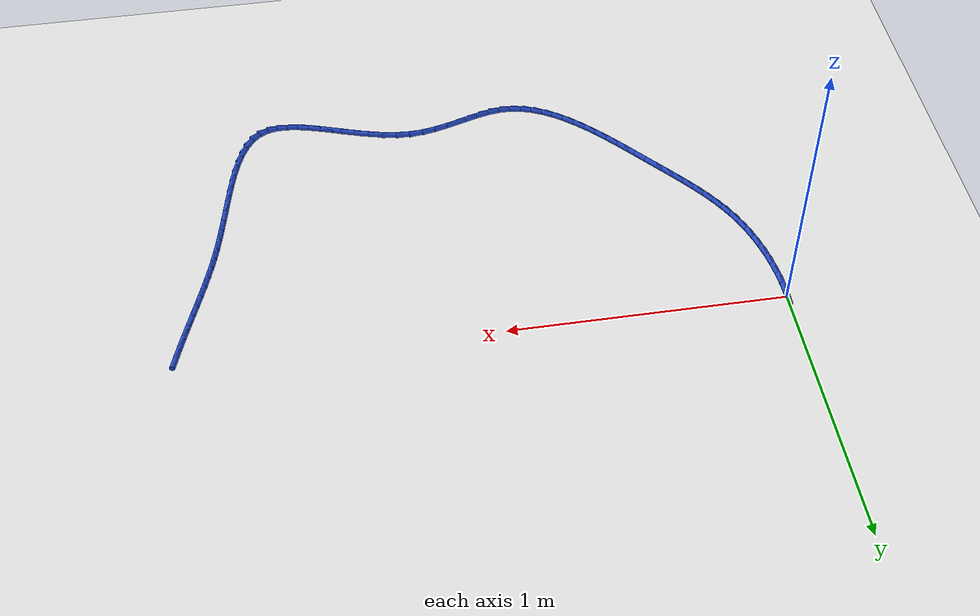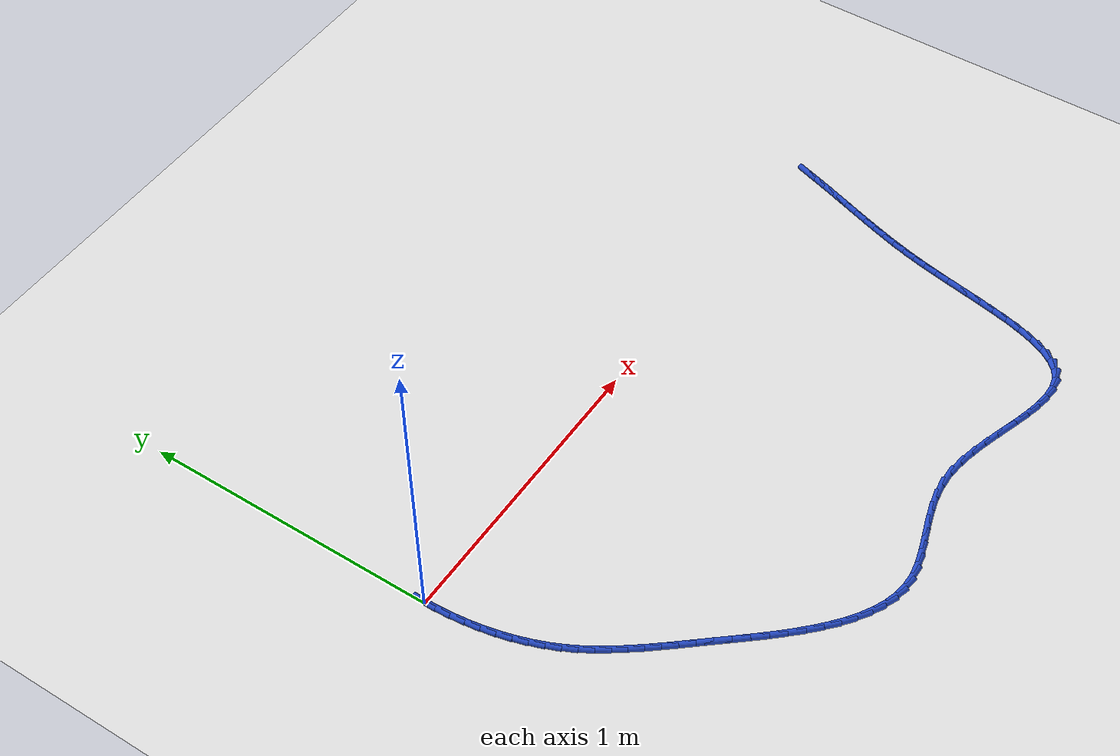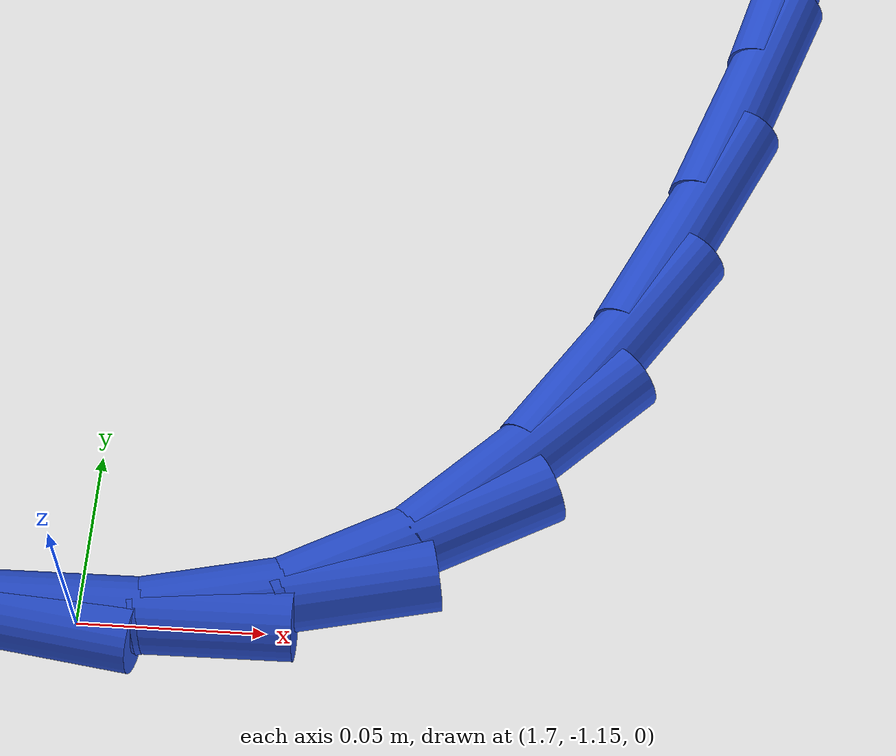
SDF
<sdf version="1.6">
 <world name="default">
  <model name="ground_plane">
   <static>1</static>
   <link name="link">
    <collision name="collision">
     <geometry><plane><normal>0 0 1</normal><size>100 100</size></plane></geometry>
     <surface><friction><ode><mu>100</mu><mu2>50</mu2></ode></friction></surface>
    </collision>
    <visual name="visual">
     <cast_shadows>0</cast_shadows>
     <geometry><plane><normal>0 0 1</normal><size>100 100</size></plane></geometry>
     <material>
      <script><uri>file://media/materials/scripts/gazebo.material</uri><name>Gazebo/WhiteGlow</name></script>
     </material>
    </visual>
   </link>
  </model>
  <model name="line">
   <link name="link_0">
    <pose>2.6020852139652106e-17 4.163336342344337e-17 0.01 0 1.57 1.5517092501515306</pose>
    <collision name="collision">
     <geometry><cylinder><radius>0.01</radius><length>0.08</length></cylinder></geometry>
    </collision>
    <visual name="visual">
     <material>
      <script><name>Gazebo/Blue</name><uri>file://media/materials/scripts/gazebo.material</uri></script>
     </material>
     <geometry><cylinder><radius>0.01</radius><length>0.08</length></cylinder></geometry>
    </visual>
   </link>
   <link name="link_75">
    <pose>2.1269436325714555 -0.04378497334036703 0.01 0 1.57 1.2665169164288894</pose>
    <collision name="collision">
     <geometry><cylinder><radius>0.01</radius><length>0.08</length></cylinder></geometry>
    </collision>
    <visual name="visual">
     <material>
      <script><name>Gazebo/Blue</name><uri>file://media/materials/scripts/gazebo.material</uri></script>
     </material>
     <geometry><cylinder><radius>0.01</radius><length>0.08</length></cylinder></geometry>
    </visual>
   </link>
   <link name="link_76">
    <pose>2.1126770678701305 -0.08921535029806768 0.01 0 1.57 1.2541441993549196</pose>
    <collision name="collision">
     <geometry><cylinder><radius>0.01</radius><length>0.08</length></cylinder></geometry>
    </collision>
    <visual name="visual">
     <material>
      <script><name>Gazebo/Blue</name><uri>file://media/materials/scripts/gazebo.material</uri></script>
     </material>
     <geometry><cylinder><radius>0.01</radius><length>0.08</length></cylinder></geometry>
    </visual>
   </link>
   <link name="link_77">
    <pose>2.0979508188845926 -0.13415657319289803 0.01 0 1.57 1.2455633368691363</pose>
    <collision name="collision">
     <geometry><cylinder><radius>0.01</radius><length>0.08</length></cylinder></geometry>
    </collision>
    <visual name="visual">
     <material>
      <script><name>Gazebo/Blue</name><uri>file://media/materials/scripts/gazebo.material</uri></script>
     </material>
     <geometry><cylinder><radius>0.01</radius><length>0.08</length></cylinder></geometry>
    </visual>
   </link>
   <link name="link_78">
    <pose>2.0829355106398157 -0.1786850038256947 0.01 0 1.57 1.2408594454276283</pose>
    <collision name="collision">
     <geometry><cylinder><radius>0.01</radius><length>0.08</length></cylinder></geometry>
    </collision>
    <visual name="visual">
     <material>
      <script><name>Gazebo/Blue</name><uri>file://media/materials/scripts/gazebo.material</uri></script>
     </material>
     <geometry><cylinder><radius>0.01</radius><length>0.08</length></cylinder></geometry>
    </visual>
   </link>
   <link name="link_79">
    <pose>2.067801768160775 -0.22287700399729649 0.01 0 1.57 1.2401084608534263</pose>
    <collision name="collision">
     <geometry><cylinder><radius>0.01</radius><length>0.08</length></cylinder></geometry>
    </collision>
    <visual name="visual">
     <material>
      <script><name>Gazebo/Blue</name><uri>file://media/materials/scripts/gazebo.material</uri></script>
     </material>
     <geometry><cylinder><radius>0.01</radius><length>0.08</length></cylinder></geometry>
    </visual>
   </link>
   <link name="link_80">
    <pose>2.0527202164724443 -0.2668089355085391 0.01 0 1.57 1.2433787307904343</pose>
    <collision name="collision">
     <geometry><cylinder><radius>0.01</radius><length>0.08</length></cylinder></geometry>
    </collision>
    <visual name="visual">
     <material>
      <script><name>Gazebo/Blue</name><uri>file://media/materials/scripts/gazebo.material</uri></script>
     </material>
     <geometry><cylinder><radius>0.01</radius><length>0.08</length></cylinder></geometry>
    </visual>
   </link>
   <link name="link_81">
    <pose>2.0378614805997985 -0.3105571601602616 0.01 0 1.57 1.2507308796747882</pose>
    <collision name="collision">
     <geometry><cylinder><radius>0.01</radius><length>0.08</length></cylinder></geometry>
    </collision>
    <visual name="visual">
     <material>
      <script><name>Gazebo/Blue</name><uri>file://media/materials/scripts/gazebo.material</uri></script>
     </material>
     <geometry><cylinder><radius>0.01</radius><length>0.08</length></cylinder></geometry>
    </visual>
   </link>
   <link name="link_82">
    <pose>2.023396185567812 -0.35419803975330033 0.01 0 1.57 1.2622157201182658</pose>
    <collision name="collision">
     <geometry><cylinder><radius>0.01</radius><length>0.08</length></cylinder></geometry>
    </collision>
    <visual name="visual">
     <material>
      <script><name>Gazebo/Blue</name><uri>file://media/materials/scripts/gazebo.material</uri></script>
     </material>
     <geometry><cylinder><radius>0.01</radius><length>0.08</length></cylinder></geometry>
    </visual>
   </link>
   <link name="link_83">
    <pose>2.00949495640146 -0.397807936088492 0.01 0 1.57 1.2778700351086891</pose>
    <collision name="collision">
     <geometry><cylinder><radius>0.01</radius><length>0.08</length></cylinder></geometry>
    </collision>
    <visual name="visual">
     <material>
      <script><name>Gazebo/Blue</name><uri>file://media/materials/scripts/gazebo.material</uri></script>
     </material>
     <geometry><cylinder><radius>0.01</radius><length>0.08</length></cylinder></geometry>
    </visual>
   </link>
   <link name="link_84">
    <pose>1.9963284181257155 -0.4414632109666753 0.01 0 1.57 1.297710138307032</pose>
    <collision name="collision">
     <geometry><cylinder><radius>0.01</radius><length>0.08</length></cylinder></geometry>
    </collision>
    <visual name="visual">
     <material>
      <script><name>Gazebo/Blue</name><uri>file://media/materials/scripts/gazebo.material</uri></script>
     </material>
     <geometry><cylinder><radius>0.01</radius><length>0.08</length></cylinder></geometry>
    </visual>
   </link>
   <link name="link_85">
    <pose>1.984067195765554 -0.4852402261886862 0.01 0 1.57 1.3214047040152306</pose>
    <collision name="collision">
     <geometry><cylinder><radius>0.01</radius><length>0.08</length></cylinder></geometry>
    </collision>
    <visual name="visual">
     <material>
      <script><name>Gazebo/Blue</name><uri>file://media/materials/scripts/gazebo.material</uri></script>
     </material>
     <geometry><cylinder><radius>0.01</radius><length>0.08</length></cylinder></geometry>
    </visual>
   </link>
   <link name="link_86">
    <pose>1.9728643768158236 -0.5292256356888021 0.01 0 1.57 1.3440418974611992</pose>
    <collision name="collision">
     <geometry><cylinder><radius>0.01</radius><length>0.08</length></cylinder></geometry>
    </collision>
    <visual name="visual">
     <material>
      <script><name>Gazebo/Blue</name><uri>file://media/materials/scripts/gazebo.material</uri></script>
     </material>
     <geometry><cylinder><radius>0.01</radius><length>0.08</length></cylinder></geometry>
    </visual>
   </link>
   <link name="link_87">
    <pose>1.96261261830921 -0.5736589304911777 0.01 0 1.57 1.3615274059149705</pose>
    <collision name="collision">
     <geometry><cylinder><radius>0.01</radius><length>0.08</length></cylinder></geometry>
    </collision>
    <visual name="visual">
     <material>
      <script><name>Gazebo/Blue</name><uri>file://media/materials/scripts/gazebo.material</uri></script>
     </material>
     <geometry><cylinder><radius>0.01</radius><length>0.08</length></cylinder></geometry>
    </visual>
   </link>
   <link name="link_88">
    <pose>1.9530051067542071 -0.6188966635572721 0.01 0 1.57 1.3735082980067606</pose>
    <collision name="collision">
     <geometry><cylinder><radius>0.01</radius><length>0.08</length></cylinder></geometry>
    </collision>
    <visual name="visual">
     <material>
      <script><name>Gazebo/Blue</name><uri>file://media/materials/scripts/gazebo.material</uri></script>
     </material>
     <geometry><cylinder><radius>0.01</radius><length>0.08</length></cylinder></geometry>
    </visual>
   </link>
   <link name="link_89">
    <pose>1.9437299555490972 -0.6652983650709312 0.01 0 1.57 1.3800376365459246</pose>
    <collision name="collision">
     <geometry><cylinder><radius>0.01</radius><length>0.08</length></cylinder></geometry>
    </collision>
    <visual name="visual">
     <material>
      <script><name>Gazebo/Blue</name><uri>file://media/materials/scripts/gazebo.material</uri></script>
     </material>
     <geometry><cylinder><radius>0.01</radius><length>0.08</length></cylinder></geometry>
    </visual>
   </link>
   <link name="link_90">
    <pose>1.9344752780921621 -0.713223565215998 0.01 0 1.57 1.38143570607454</pose>
    <collision name="collision">
     <geometry><cylinder><radius>0.01</radius><length>0.08</length></cylinder></geometry>
    </collision>
    <visual name="visual">
     <material>
      <script><name>Gazebo/Blue</name><uri>file://media/materials/scripts/gazebo.material</uri></script>
     </material>
     <geometry><cylinder><radius>0.01</radius><length>0.08</length></cylinder></geometry>
    </visual>
   </link>
   <link name="link_91">
    <pose>1.9249291877816848 -0.7630317941763154 0.01 0 1.57 1.3777832927411324</pose>
    <collision name="collision">
     <geometry><cylinder><radius>0.01</radius><length>0.08</length></cylinder></geometry>
    </collision>
    <visual name="visual">
     <material>
      <script><name>Gazebo/Blue</name><uri>file://media/materials/scripts/gazebo.material</uri></script>
     </material>
     <geometry><cylinder><radius>0.01</radius><length>0.08</length></cylinder></geometry>
    </visual>
   </link>
   <link name="link_92">
    <pose>1.9147721651788805 -0.8150001924086983 0.01 0 1.57 1.3638887959728643</pose>
    <collision name="collision">
     <geometry><cylinder><radius>0.01</radius><length>0.08</length></cylinder></geometry>
    </collision>
    <visual name="visual">
     <material>
      <script><name>Gazebo/Blue</name><uri>file://media/materials/scripts/gazebo.material</uri></script>
     </material>
     <geometry><cylinder><radius>0.01</radius><length>0.08</length></cylinder></geometry>
    </visual>
   </link>
   <link name="link_93">
    <pose>1.9035827513253574 -0.8683055533925688 0.01 0 1.57 1.335474541532387</pose>
    <collision name="collision">
     <geometry><cylinder><radius>0.01</radius><length>0.08</length></cylinder></geometry>
    </collision>
    <visual name="visual">
     <material>
      <script><name>Gazebo/Blue</name><uri>file://media/materials/scripts/gazebo.material</uri></script>
     </material>
     <geometry><cylinder><radius>0.01</radius><length>0.08</length></cylinder></geometry>
    </visual>
   </link>
   <link name="link_94">
    <pose>1.890866851319954 -0.9213406298312229 0.01 0 1.57 1.2902128713541579</pose>
    <collision name="collision">
     <geometry><cylinder><radius>0.01</radius><length>0.08</length></cylinder></geometry>
    </collision>
    <visual name="visual">
     <material>
      <script><name>Gazebo/Blue</name><uri>file://media/materials/scripts/gazebo.material</uri></script>
     </material>
     <geometry><cylinder><radius>0.01</radius><length>0.08</length></cylinder></geometry>
    </visual>
   </link>
   <link name="link_95">
    <pose>1.8761288099908289 -0.9724813326855569 0.01 0 1.57 1.2231634257358797</pose>
    <collision name="collision">
     <geometry><cylinder><radius>0.01</radius><length>0.08</length></cylinder></geometry>
    </collision>
    <visual name="visual">
     <material>
      <script><name>Gazebo/Blue</name><uri>file://media/materials/scripts/gazebo.material</uri></script>
     </material>
     <geometry><cylinder><radius>0.01</radius><length>0.08</length></cylinder></geometry>
    </visual>
   </link>
   <link name="link_96">
    <pose>1.8588729721661381 -1.020103572916467 0.01 0 1.57 1.125593211295464</pose>
    <collision name="collision">
     <geometry><cylinder><radius>0.01</radius><length>0.08</length></cylinder></geometry>
    </collision>
    <visual name="visual">
     <material>
      <script><name>Gazebo/Blue</name><uri>file://media/materials/scripts/gazebo.material</uri></script>
     </material>
     <geometry><cylinder><radius>0.01</radius><length>0.08</length></cylinder></geometry>
    </visual>
   </link>
   <link name="link_97">
    <pose>1.838603682674039 -1.062583261484852 0.01 0 1.57 0.983381371062787</pose>
    <collision name="collision">
     <geometry><cylinder><radius>0.01</radius><length>0.08</length></cylinder></geometry>
    </collision>
    <visual name="visual">
     <material>
      <script><name>Gazebo/Blue</name><uri>file://media/materials/scripts/gazebo.material</uri></script>
     </material>
     <geometry><cylinder><radius>0.01</radius><length>0.08</length></cylinder></geometry>
    </visual>
   </link>
   <link name="link_98">
    <pose>1.8148252863426912 -1.0982963093516085 0.01 0 1.57 0.7770354832604707</pose>
    <collision name="collision">
     <geometry><cylinder><radius>0.01</radius><length>0.08</length></cylinder></geometry>
    </collision>
    <visual name="visual">
     <material>
      <script><name>Gazebo/Blue</name><uri>file://media/materials/scripts/gazebo.material</uri></script>
     </material>
     <geometry><cylinder><radius>0.01</radius><length>0.08</length></cylinder></geometry>
    </visual>
   </link>
   <link name="link_99">
    <pose>1.7870421280002495 -1.1256186274776343 0.01 0 1.57 0.49793593564789457</pose>
    <collision name="collision">
     <geometry><cylinder><radius>0.01</radius><length>0.08</length></cylinder></geometry>
    </collision>
    <visual name="visual">
     <material>
      <script><name>Gazebo/Blue</name><uri>file://media/materials/scripts/gazebo.material</uri></script>
     </material>
     <geometry><cylinder><radius>0.01</radius><length>0.08</length></cylinder></geometry>
    </visual>
   </link>
   <link name="link_100">
    <pose>1.7548246564854093 -1.1431328642111627 0.01 0 1.57 0.22010862991105137</pose>
    <collision name="collision">
     <geometry><cylinder><radius>0.01</radius><length>0.08</length></cylinder></geometry>
    </collision>
    <visual name="visual">
     <material>
      <script><name>Gazebo/Blue</name><uri>file://media/materials/scripts/gazebo.material</uri></script>
     </material>
     <geometry><cylinder><radius>0.01</radius><length>0.08</length></cylinder></geometry>
    </visual>
   </link>
   <link name="link_101">
    <pose>1.718342371463013 -1.1512951730277734 0.01 0 1.57 0.006546016118900333</pose>
    <collision name="collision">
     <geometry><cylinder><radius>0.01</radius><length>0.08</length></cylinder></geometry>
    </collision>
    <visual name="visual">
     <material>
      <script><name>Gazebo/Blue</name><uri>file://media/materials/scripts/gazebo.material</uri></script>
     </material>
     <geometry><cylinder><radius>0.01</radius><length>0.08</length></cylinder></geometry>
    </visual>
   </link>
   <link name="link_102">
    <pose>1.678083563391848 -1.1515587115985837 0.01 0 1.57 -0.14082190317906665</pose>
    <collision name="collision">
     <geometry><cylinder><radius>0.01</radius><length>0.08</length></cylinder></geometry>
    </collision>
    <visual name="visual">
     <material>
      <script><name>Gazebo/Blue</name><uri>file://media/materials/scripts/gazebo.material</uri></script>
     </material>
     <geometry><cylinder><radius>0.01</radius><length>0.08</length></cylinder></geometry>
    </visual>
   </link>
   <link name="link_103">
    <pose>1.6345394821891983 -1.1453858931710734 0.01 0 1.57 -0.23606763685060314</pose>
    <collision name="collision">
     <geometry><cylinder><radius>0.01</radius><length>0.08</length></cylinder></geometry>
    </collision>
    <visual name="visual">
     <material>
      <script><name>Gazebo/Blue</name><uri>file://media/materials/scripts/gazebo.material</uri></script>
     </material>
     <geometry><cylinder><radius>0.01</radius><length>0.08</length></cylinder></geometry>
    </visual>
   </link>
   <link name="link_104">
    <pose>1.58820137777235 -1.1342391309927242 0.01 0 1.57 -0.2927017297774417</pose>
    <collision name="collision">
     <geometry><cylinder><radius>0.01</radius><length>0.08</length></cylinder></geometry>
    </collision>
    <visual name="visual">
     <material>
      <script><name>Gazebo/Blue</name><uri>file://media/materials/scripts/gazebo.material</uri></script>
     </material>
     <geometry><cylinder><radius>0.01</radius><length>0.08</length></cylinder></geometry>
    </visual>
   </link>
   <link name="link_105">
    <pose>1.5395605000585857 -1.1195808383110173 0.01 0 1.57 -0.3197860072527721</pose>
    <collision name="collision">
     <geometry><cylinder><radius>0.01</radius><length>0.08</length></cylinder></geometry>
    </collision>
    <visual name="visual">
     <material>
      <script><name>Gazebo/Blue</name><uri>file://media/materials/scripts/gazebo.material</uri></script>
     </material>
     <geometry><cylinder><radius>0.01</radius><length>0.08</length></cylinder></geometry>
    </visual>
   </link>
   <link name="link_106">
    <pose>1.489108098965192 -1.1028734283734334 0.01 0 1.57 -0.3223858936547069</pose>
    <collision name="collision">
     <geometry><cylinder><radius>0.01</radius><length>0.08</length></cylinder></geometry>
    </collision>
    <visual name="visual">
     <material>
      <script><name>Gazebo/Blue</name><uri>file://media/materials/scripts/gazebo.material</uri></script>
     </material>
     <geometry><cylinder><radius>0.01</radius><length>0.08</length></cylinder></geometry>
    </visual>
   </link>
   <link name="link_107">
    <pose>1.437335424409451 -1.085579314427453 0.01 0 1.57 -0.3025449217938873</pose>
    <collision name="collision">
     <geometry><cylinder><radius>0.01</radius><length>0.08</length></cylinder></geometry>
    </collision>
    <visual name="visual">
     <material>
      <script><name>Gazebo/Blue</name><uri>file://media/materials/scripts/gazebo.material</uri></script>
     </material>
     <geometry><cylinder><radius>0.01</radius><length>0.08</length></cylinder></geometry>
    </visual>
   </link>
   <link name="link_108">
    <pose>1.3847337263086488 -1.0691609097205579 0.01 0 1.57 -0.25995135113787704</pose>
    <collision name="collision">
     <geometry><cylinder><radius>0.01</radius><length>0.08</length></cylinder></geometry>
    </collision>
    <visual name="visual">
     <material>
      <script><name>Gazebo/Blue</name><uri>file://media/materials/scripts/gazebo.material</uri></script>
     </material>
     <geometry><cylinder><radius>0.01</radius><length>0.08</length></cylinder></geometry>
    </visual>
   </link>
   <link name="link_109">
    <pose>1.3317942545800705 -1.055080627500229 0.01 0 1.57 -0.19233647166861242</pose>
    <collision name="collision">
     <geometry><cylinder><radius>0.01</radius><length>0.08</length></cylinder></geometry>
    </collision>
    <visual name="visual">
     <material>
      <script><name>Gazebo/Blue</name><uri>file://media/materials/scripts/gazebo.material</uri></script>
     </material>
     <geometry><cylinder><radius>0.01</radius><length>0.08</length></cylinder></geometry>
    </visual>
   </link>
   <link name="link_110">
    <pose>1.2790082591409988 -1.044800881013947 0.01 0 1.57 -0.09592022087632711</pose>
    <collision name="collision">
     <geometry><cylinder><radius>0.01</radius><length>0.08</length></cylinder></geometry>
    </collision>
    <visual name="visual">
     <material>
      <script><name>Gazebo/Blue</name><uri>file://media/materials/scripts/gazebo.material</uri></script>
     </material>
     <geometry><cylinder><radius>0.01</radius><length>0.08</length></cylinder></geometry>
    </visual>
   </link>
   <link name="link_111">
    <pose>1.226866989908719 -1.0397840835091932 0.01 0 1.57 0.03048969336150573</pose>
    <collision name="collision">
     <geometry><cylinder><radius>0.01</radius><length>0.08</length></cylinder></geometry>
    </collision>
    <visual name="visual">
     <material>
      <script><name>Gazebo/Blue</name><uri>file://media/materials/scripts/gazebo.material</uri></script>
     </material>
     <geometry><cylinder><radius>0.01</radius><length>0.08</length></cylinder></geometry>
    </visual>
   </link>
   <link name="link_112">
    <pose>1.1758355822122892 -1.0413404978035683 0.01 0 1.57 0.15140028410111894</pose>
    <collision name="collision">
     <geometry><cylinder><radius>0.01</radius><length>0.08</length></cylinder></geometry>
    </collision>
    <visual name="visual">
     <material>
      <script><name>Gazebo/Blue</name><uri>file://media/materials/scripts/gazebo.material</uri></script>
     </material>
     <geometry><cylinder><radius>0.01</radius><length>0.08</length></cylinder></geometry>
    </visual>
   </link>
   <link name="link_113">
    <pose>1.1260623144628752 -1.048934295332848 0.01 0 1.57 0.239587272311852</pose>
    <collision name="collision">
     <geometry><cylinder><radius>0.01</radius><length>0.08</length></cylinder></geometry>
    </collision>
    <visual name="visual">
     <material>
      <script><name>Gazebo/Blue</name><uri>file://media/materials/scripts/gazebo.material</uri></script>
     </material>
     <geometry><cylinder><radius>0.01</radius><length>0.08</length></cylinder></geometry>
    </visual>
   </link>
   <link name="link_114">
    <pose>1.0774845560389603 -1.0608008362757106 0.01 0 1.57 0.29373270128893475</pose>
    <collision name="collision">
     <geometry><cylinder><radius>0.01</radius><length>0.08</length></cylinder></geometry>
    </collision>
    <visual name="visual">
     <material>
      <script><name>Gazebo/Blue</name><uri>file://media/materials/scripts/gazebo.material</uri></script>
     </material>
     <geometry><cylinder><radius>0.01</radius><length>0.08</length></cylinder></geometry>
    </visual>
   </link>
   <link name="link_115">
    <pose>1.0300358579734963 -1.0751532341298344 0.01 0 1.57 0.31376171680279685</pose>
    <collision name="collision">
     <geometry><cylinder><radius>0.01</radius><length>0.08</length></cylinder></geometry>
    </collision>
    <visual name="visual">
     <material>
      <script><name>Gazebo/Blue</name><uri>file://media/materials/scripts/gazebo.material</uri></script>
     </material>
     <geometry><cylinder><radius>0.01</radius><length>0.08</length></cylinder></geometry>
    </visual>
   </link>
   <link name="link_116">
    <pose>0.9836497712994348 -1.0902046023928957 0.01 0 1.57 0.29844502608587137</pose>
    <collision name="collision">
     <geometry><cylinder><radius>0.01</radius><length>0.08</length></cylinder></geometry>
    </collision>
    <visual name="visual">
     <material>
      <script><name>Gazebo/Blue</name><uri>file://media/materials/scripts/gazebo.material</uri></script>
     </material>
     <geometry><cylinder><radius>0.01</radius><length>0.08</length></cylinder></geometry>
    </visual>
   </link>
   <link name="link_117">
    <pose>0.9382598470497294 -1.104168054562573 0.01 0 1.57 0.24441965836808976</pose>
    <collision name="collision">
     <geometry><cylinder><radius>0.01</radius><length>0.08</length></cylinder></geometry>
    </collision>
    <visual name="visual">
     <material>
      <script><name>Gazebo/Blue</name><uri>file://media/materials/scripts/gazebo.material</uri></script>
     </material>
     <geometry><cylinder><radius>0.01</radius><length>0.08</length></cylinder></geometry>
    </visual>
   </link>
   <link name="link_118">
    <pose>0.8937996362573306 -1.1152567041365433 0.01 0 1.57 0.14636349501270823</pose>
    <collision name="collision">
     <geometry><cylinder><radius>0.01</radius><length>0.08</length></cylinder></geometry>
    </collision>
    <visual name="visual">
     <material>
      <script><name>Gazebo/Blue</name><uri>file://media/materials/scripts/gazebo.material</uri></script>
     </material>
     <geometry><cylinder><radius>0.01</radius><length>0.08</length></cylinder></geometry>
    </visual>
   </link>
   <link name="link_119">
    <pose>0.8502026899551924 -1.1216836646124848 0.01 0 1.57 0.000965168243777455</pose>
    <collision name="collision">
     <geometry><cylinder><radius>0.01</radius><length>0.08</length></cylinder></geometry>
    </collision>
    <visual name="visual">
     <material>
      <script><name>Gazebo/Blue</name><uri>file://media/materials/scripts/gazebo.material</uri></script>
     </material>
     <geometry><cylinder><radius>0.01</radius><length>0.08</length></cylinder></geometry>
    </visual>
   </link>
   <link name="link_120">
    <pose>0.8074040593198372 -1.121724972504478 0.01 0 1.57 -0.16146583894764427</pose>
    <collision name="collision">
     <geometry><cylinder><radius>0.01</radius><length>0.08</length></cylinder></geometry>
    </collision>
    <visual name="visual">
     <material>
      <script><name>Gazebo/Blue</name><uri>file://media/materials/scripts/gazebo.material</uri></script>
     </material>
     <geometry><cylinder><radius>0.01</radius><length>0.08</length></cylinder></geometry>
    </visual>
   </link>
   <link name="link_121">
    <pose>0.7653679124502072 -1.1148779638216553 0.01 0 1.57 -0.3079400313557776</pose>
    <collision name="collision">
     <geometry><cylinder><radius>0.01</radius><length>0.08</length></cylinder></geometry>
    </collision>
    <visual name="visual">
     <material>
      <script><name>Gazebo/Blue</name><uri>file://media/materials/scripts/gazebo.material</uri></script>
     </material>
     <geometry><cylinder><radius>0.01</radius><length>0.08</length></cylinder></geometry>
    </visual>
   </link>
   <link name="link_122">
    <pose>0.7240848233459568 -1.101747561176723 0.01 0 1.57 -0.43360052049383113</pose>
    <collision name="collision">
     <geometry><cylinder><radius>0.01</radius><length>0.08</length></cylinder></geometry>
    </collision>
    <visual name="visual">
     <material>
      <script><name>Gazebo/Blue</name><uri>file://media/materials/scripts/gazebo.material</uri></script>
     </material>
     <geometry><cylinder><radius>0.01</radius><length>0.08</length></cylinder></geometry>
    </visual>
   </link>
   <link name="link_123">
    <pose>0.683546322321976 -1.0829787995025917 0.01 0 1.57 -0.5382118713252378</pose>
    <collision name="collision">
     <geometry><cylinder><radius>0.01</radius><length>0.08</length></cylinder></geometry>
    </collision>
    <visual name="visual">
     <material>
      <script><name>Gazebo/Blue</name><uri>file://media/materials/scripts/gazebo.material</uri></script>
     </material>
     <geometry><cylinder><radius>0.01</radius><length>0.08</length></cylinder></geometry>
    </visual>
   </link>
   <link name="link_124">
    <pose>0.6437439396931557 -1.0592167137321729 0.01 0 1.57 -0.6236279792006617</pose>
    <collision name="collision">
     <geometry><cylinder><radius>0.01</radius><length>0.08</length></cylinder></geometry>
    </collision>
    <visual name="visual">
     <material>
      <script><name>Gazebo/Blue</name><uri>file://media/materials/scripts/gazebo.material</uri></script>
     </material>
     <geometry><cylinder><radius>0.01</radius><length>0.08</length></cylinder></geometry>
    </visual>
   </link>
   <link name="link_125">
    <pose>0.6046692057743871 -1.031106338798378 0.01 0 1.57 -0.6924361320430803</pose>
    <collision name="collision">
     <geometry><cylinder><radius>0.01</radius><length>0.08</length></cylinder></geometry>
    </collision>
    <visual name="visual">
     <material>
      <script><name>Gazebo/Blue</name><uri>file://media/materials/scripts/gazebo.material</uri></script>
     </material>
     <geometry><cylinder><radius>0.01</radius><length>0.08</length></cylinder></geometry>
    </visual>
   </link>
   <link name="link_126">
    <pose>0.5663136508805593 -0.9992927096341166 0.01 0 1.57 -0.7471773549939874</pose>
    <collision name="collision">
     <geometry><cylinder><radius>0.01</radius><length>0.08</length></cylinder></geometry>
    </collision>
    <visual name="visual">
     <material>
      <script><name>Gazebo/Blue</name><uri>file://media/materials/scripts/gazebo.material</uri></script>
     </material>
     <geometry><cylinder><radius>0.01</radius><length>0.08</length></cylinder></geometry>
    </visual>
   </link>
   <link name="link_127">
    <pose>0.5286688053265646 -0.9644208611723017 0.01 0 1.57 -0.7900113304597973</pose>
    <collision name="collision">
     <geometry><cylinder><radius>0.01</radius><length>0.08</length></cylinder></geometry>
    </collision>
    <visual name="visual">
     <material>
      <script><name>Gazebo/Blue</name><uri>file://media/materials/scripts/gazebo.material</uri></script>
     </material>
     <geometry><cylinder><radius>0.01</radius><length>0.08</length></cylinder></geometry>
    </visual>
   </link>
   <link name="link_128">
    <pose>0.49172619942729184 -0.9271358283458422 0.01 0 1.57 -0.8226222778341885</pose>
    <collision name="collision">
     <geometry><cylinder><radius>0.01</radius><length>0.08</length></cylinder></geometry>
    </collision>
    <visual name="visual">
     <material>
      <script><name>Gazebo/Blue</name><uri>file://media/materials/scripts/gazebo.material</uri></script>
     </material>
     <geometry><cylinder><radius>0.01</radius><length>0.08</length></cylinder></geometry>
    </visual>
   </link>
   <link name="link_129">
    <pose>0.45547736349763246 -0.8880826460876501 0.01 0 1.57 -0.8462257424737984</pose>
    <collision name="collision">
     <geometry><cylinder><radius>0.01</radius><length>0.08</length></cylinder></geometry>
    </collision>
    <visual name="visual">
     <material>
      <script><name>Gazebo/Blue</name><uri>file://media/materials/scripts/gazebo.material</uri></script>
     </material>
     <geometry><cylinder><radius>0.01</radius><length>0.08</length></cylinder></geometry>
    </visual>
   </link>
   <link name="link_130">
    <pose>0.41991382785247783 -0.8479063493306372 0.01 0 1.57 -0.8616017678454787</pose>
    <collision name="collision">
     <geometry><cylinder><radius>0.01</radius><length>0.08</length></cylinder></geometry>
    </collision>
    <visual name="visual">
     <material>
      <script><name>Gazebo/Blue</name><uri>file://media/materials/scripts/gazebo.material</uri></script>
     </material>
     <geometry><cylinder><radius>0.01</radius><length>0.08</length></cylinder></geometry>
    </visual>
   </link>
   <link name="link_131">
    <pose>0.38502712280671697 -0.8072519730077129 0.01 0 1.57 -0.8691189173598098</pose>
    <collision name="collision">
     <geometry><cylinder><radius>0.01</radius><length>0.08</length></cylinder></geometry>
    </collision>
    <visual name="visual">
     <material>
      <script><name>Gazebo/Blue</name><uri>file://media/materials/scripts/gazebo.material</uri></script>
     </material>
     <geometry><cylinder><radius>0.01</radius><length>0.08</length></cylinder></geometry>
    </visual>
   </link>
   <link name="link_132">
    <pose>0.35080877867524163 -0.7667645520517896 0.01 0 1.57 -0.868904857406296</pose>
    <collision name="collision">
     <geometry><cylinder><radius>0.01</radius><length>0.08</length></cylinder></geometry>
    </collision>
    <visual name="visual">
     <material>
      <script><name>Gazebo/Blue</name><uri>file://media/materials/scripts/gazebo.material</uri></script>
     </material>
     <geometry><cylinder><radius>0.01</radius><length>0.08</length></cylinder></geometry>
    </visual>
   </link>
   <link name="link_133">
    <pose>0.3172527266128874 -0.7270779951351999 0.01 0 1.57 -0.8671080196753899</pose>
    <collision name="collision">
     <geometry><cylinder><radius>0.01</radius><length>0.08</length></cylinder></geometry>
    </collision>
    <visual name="visual">
     <material>
      <script><name>Gazebo/Blue</name><uri>file://media/materials/scripts/gazebo.material</uri></script>
     </material>
     <geometry><cylinder><radius>0.01</radius><length>0.08</length></cylinder></geometry>
    </visual>
   </link>
   <link name="link_134">
    <pose>0.2844418677668714 -0.6884138955151784 0.01 0 1.57 -0.8721908676887039</pose>
    <collision name="collision">
     <geometry><cylinder><radius>0.01</radius><length>0.08</length></cylinder></geometry>
    </collision>
    <visual name="visual">
     <material>
      <script><name>Gazebo/Blue</name><uri>file://media/materials/scripts/gazebo.material</uri></script>
     </material>
     <geometry><cylinder><radius>0.01</radius><length>0.08</length></cylinder></geometry>
    </visual>
   </link>
   <link name="link_135">
    <pose>0.2525722160760199 -0.6504696455765404 0.01 0 1.57 -0.8851712031338627</pose>
    <collision name="collision">
     <geometry><cylinder><radius>0.01</radius><length>0.08</length></cylinder></geometry>
    </collision>
    <visual name="visual">
     <material>
      <script><name>Gazebo/Blue</name><uri>file://media/materials/scripts/gazebo.material</uri></script>
     </material>
     <geometry><cylinder><radius>0.01</radius><length>0.08</length></cylinder></geometry>
    </visual>
   </link>
   <link name="link_136">
    <pose>0.22184710229541502 -0.6129087292361795 0.01 0 1.57 -0.9064463019944732</pose>
    <collision name="collision">
     <geometry><cylinder><radius>0.01</radius><length>0.08</length></cylinder></geometry>
    </collision>
    <visual name="visual">
     <material>
      <script><name>Gazebo/Blue</name><uri>file://media/materials/scripts/gazebo.material</uri></script>
     </material>
     <geometry><cylinder><radius>0.01</radius><length>0.08</length></cylinder></geometry>
    </visual>
   </link>
   <link name="link_137">
    <pose>0.19246985718014065 -0.5753946304109899 0.01 0 1.57 -0.9362735422203134</pose>
    <collision name="collision">
     <geometry><cylinder><radius>0.01</radius><length>0.08</length></cylinder></geometry>
    </collision>
    <visual name="visual">
     <material>
      <script><name>Gazebo/Blue</name><uri>file://media/materials/scripts/gazebo.material</uri></script>
     </material>
     <geometry><cylinder><radius>0.01</radius><length>0.08</length></cylinder></geometry>
    </visual>
   </link>
   <link name="link_138">
    <pose>0.16464381148528057 -0.537590833017867 0.01 0 1.57 -0.9747039656863976</pose>
    <collision name="collision">
     <geometry><cylinder><radius>0.01</radius><length>0.08</length></cylinder></geometry>
    </collision>
    <visual name="visual">
     <material>
      <script><name>Gazebo/Blue</name><uri>file://media/materials/scripts/gazebo.material</uri></script>
     </material>
     <geometry><cylinder><radius>0.01</radius><length>0.08</length></cylinder></geometry>
    </visual>
   </link>
   <link name="link_139">
    <pose>0.13857229596591725 -0.4991608209737038 0.01 0 1.57 -1.0215021872739833</pose>
    <collision name="collision">
     <geometry><cylinder><radius>0.01</radius><length>0.08</length></cylinder></geometry>
    </collision>
    <visual name="visual">
     <material>
      <script><name>Gazebo/Blue</name><uri>file://media/materials/scripts/gazebo.material</uri></script>
     </material>
     <geometry><cylinder><radius>0.01</radius><length>0.08</length></cylinder></geometry>
    </visual>
   </link>
   <link name="link_140">
    <pose>0.1144586413771348 -0.45976807819539545 0.01 0 1.57 -1.076066735315469</pose>
    <collision name="collision">
     <geometry><cylinder><radius>0.01</radius><length>0.08</length></cylinder></geometry>
    </collision>
    <visual name="visual">
     <material>
      <script><name>Gazebo/Blue</name><uri>file://media/materials/scripts/gazebo.material</uri></script>
     </material>
     <geometry><cylinder><radius>0.01</radius><length>0.08</length></cylinder></geometry>
    </visual>
   </link>
   <link name="link_141">
    <pose>0.09250617847401571 -0.41907608859983486 0.01 0 1.57 -1.1368183923524566</pose>
    <collision name="collision">
     <geometry><cylinder><radius>0.01</radius><length>0.08</length></cylinder></geometry>
    </collision>
    <visual name="visual">
     <material>
      <script><name>Gazebo/Blue</name><uri>file://media/materials/scripts/gazebo.material</uri></script>
     </material>
     <geometry><cylinder><radius>0.01</radius><length>0.08</length></cylinder></geometry>
    </visual>
   </link>
   <link name="link_142">
    <pose>0.07290461464124713 -0.37678070071188724 0.01 0 1.57 -1.1971823840029163</pose>
    <collision name="collision">
     <geometry><cylinder><radius>0.01</radius><length>0.08</length></cylinder></geometry>
    </collision>
    <visual name="visual">
     <material>
      <script><name>Gazebo/Blue</name><uri>file://media/materials/scripts/gazebo.material</uri></script>
     </material>
     <geometry><cylinder><radius>0.01</radius><length>0.08</length></cylinder></geometry>
    </visual>
   </link>
   <link name="link_143">
    <pose>0.05570501080060824 -0.3329071410508348 0.01 0 1.57 -1.254040688223053</pose>
    <collision name="collision">
     <geometry><cylinder><radius>0.01</radius><length>0.08</length></cylinder></geometry>
    </collision>
    <visual name="visual">
     <material>
      <script><name>Gazebo/Blue</name><uri>file://media/materials/scripts/gazebo.material</uri></script>
     </material>
     <geometry><cylinder><radius>0.01</radius><length>0.08</length></cylinder></geometry>
    </visual>
   </link>
   <link name="link_144">
    <pose>0.04087753320001137 -0.28767281504105296 0.01 0 1.57 -1.3077906819119436</pose>
    <collision name="collision">
     <geometry><cylinder><radius>0.01</radius><length>0.08</length></cylinder></geometry>
    </collision>
    <visual name="visual">
     <material>
      <script><name>Gazebo/Blue</name><uri>file://media/materials/scripts/gazebo.material</uri></script>
     </material>
     <geometry><cylinder><radius>0.01</radius><length>0.08</length></cylinder></geometry>
    </visual>
   </link>
   <link name="link_145">
    <pose>0.0283913368637906 -0.24129753043863145 0.01 0 1.57 -1.3588781734780775</pose>
    <collision name="collision">
     <geometry><cylinder><radius>0.01</radius><length>0.08</length></cylinder></geometry>
    </collision>
    <visual name="visual">
     <material>
      <script><name>Gazebo/Blue</name><uri>file://media/materials/scripts/gazebo.material</uri></script>
     </material>
     <geometry><cylinder><radius>0.01</radius><length>0.08</length></cylinder></geometry>
    </visual>
   </link>
   <link name="link_146">
    <pose>0.01821557681627912 -0.19400109499965684 0.01 0 1.57 -1.4077456595323388</pose>
    <collision name="collision">
     <geometry><cylinder><radius>0.01</radius><length>0.08</length></cylinder></geometry>
    </collision>
    <visual name="visual">
     <material>
      <script><name>Gazebo/Blue</name><uri>file://media/materials/scripts/gazebo.material</uri></script>
     </material>
     <geometry><cylinder><radius>0.01</radius><length>0.08</length></cylinder></geometry>
    </visual>
   </link>
   <link name="link_147">
    <pose>0.010319408081810737 -0.146003316480218 0.01 0 1.57 -1.4548276316617663</pose>
    <collision name="collision">
     <geometry><cylinder><radius>0.01</radius><length>0.08</length></cylinder></geometry>
    </collision>
    <visual name="visual">
     <material>
      <script><name>Gazebo/Blue</name><uri>file://media/materials/scripts/gazebo.material</uri></script>
     </material>
     <geometry><cylinder><radius>0.01</radius><length>0.08</length></cylinder></geometry>
    </visual>
   </link>
   <link name="link_148">
    <pose>0.0046719856847191096 -0.09752400263640404 0.01 0 1.57 -1.5005500202073287</pose>
    <collision name="collision">
     <geometry><cylinder><radius>0.01</radius><length>0.08</length></cylinder></geometry>
    </collision>
    <visual name="visual">
     <material>
      <script><name>Gazebo/Blue</name><uri>file://media/materials/scripts/gazebo.material</uri></script>
     </material>
     <geometry><cylinder><radius>0.01</radius><length>0.08</length></cylinder></geometry>
    </visual>
   </link>
   <link name="link_149">
    <pose>0.0012424646493376422 -0.0487829612243014 0.01 0 1.57 -1.545332597904508</pose>
    <collision name="collision">
     <geometry><cylinder><radius>0.01</radius><length>0.08</length></cylinder></geometry>
    </collision>
    <visual name="visual">
     <material>
      <script><name>Gazebo/Blue</name><uri>file://media/materials/scripts/gazebo.material</uri></script>
     </material>
     <geometry><cylinder><radius>0.01</radius><length>0.08</length></cylinder></geometry>
    </visual>
   </link>
  </model>
 </world>
</sdf>
